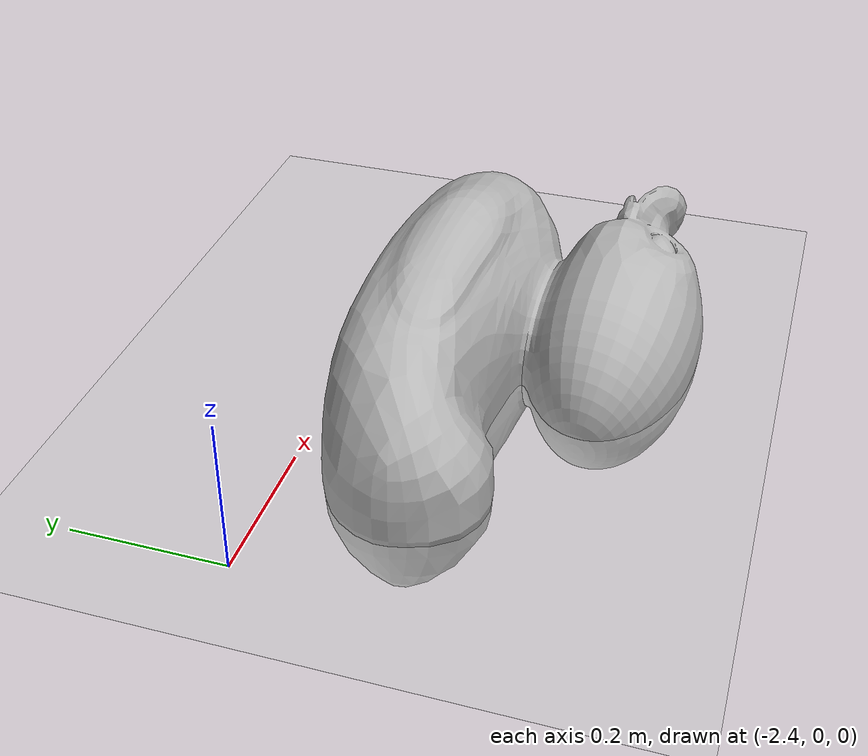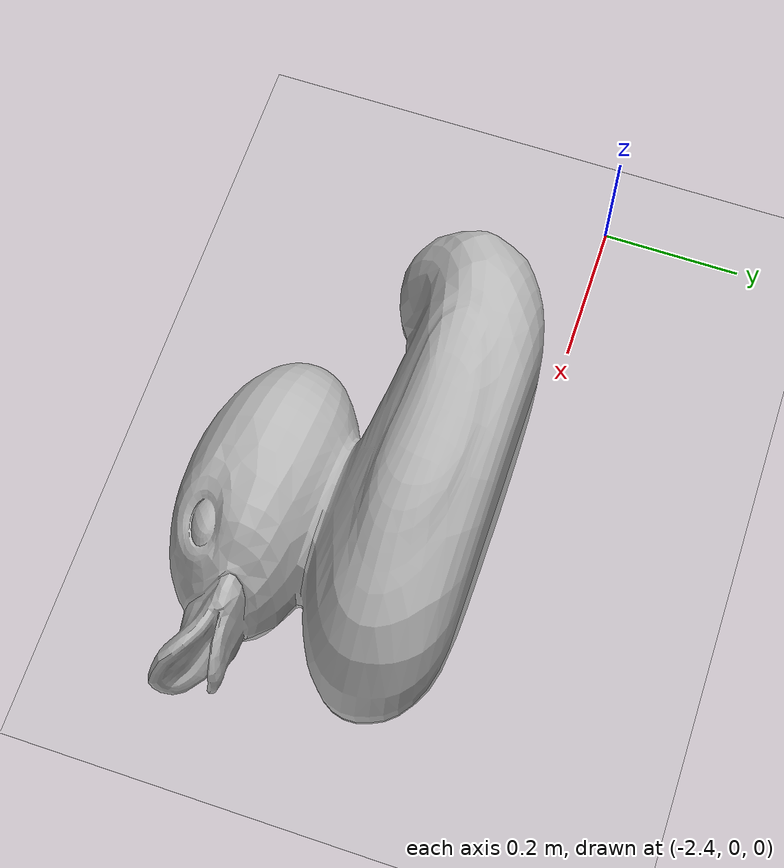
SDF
<?xml version="1.0"?>
<sdf version="1.4">
  <world name="default">
    <include>
      <uri>model://ground_plane</uri>
    </include>
    <include>
      <uri>model://sun</uri>
    </include>
    <include>
      <uri>model://duck</uri>
      <pose>-2 0 0  0 0 0</pose>
    </include>
  </world>
</sdf>

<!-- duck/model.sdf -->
<sdf version="1.5">
  <model name="duck">
    <static>true</static>
    <link name="chassis">
      <pose>0 0 0 1.57 0 0</pose>
      <collision name="collision">
        <geometry>
          <mesh>
            <uri>model://duck/meshes/duck.dae</uri>
          </mesh>
        </geometry>
      </collision>
      <visual name="visual">
        <geometry>
          <mesh>
            <uri>model://duck/meshes/duck.dae</uri>
          </mesh>
        </geometry>
        <material>
          <script>
            <uri>model://duck/materials/scripts</uri>
            <uri>model://duck/materials/textures</uri>
            <name>Duck/Diffuse</name>
          </script>
        </material>
      </visual>
    </link>
  </model>
</sdf>
